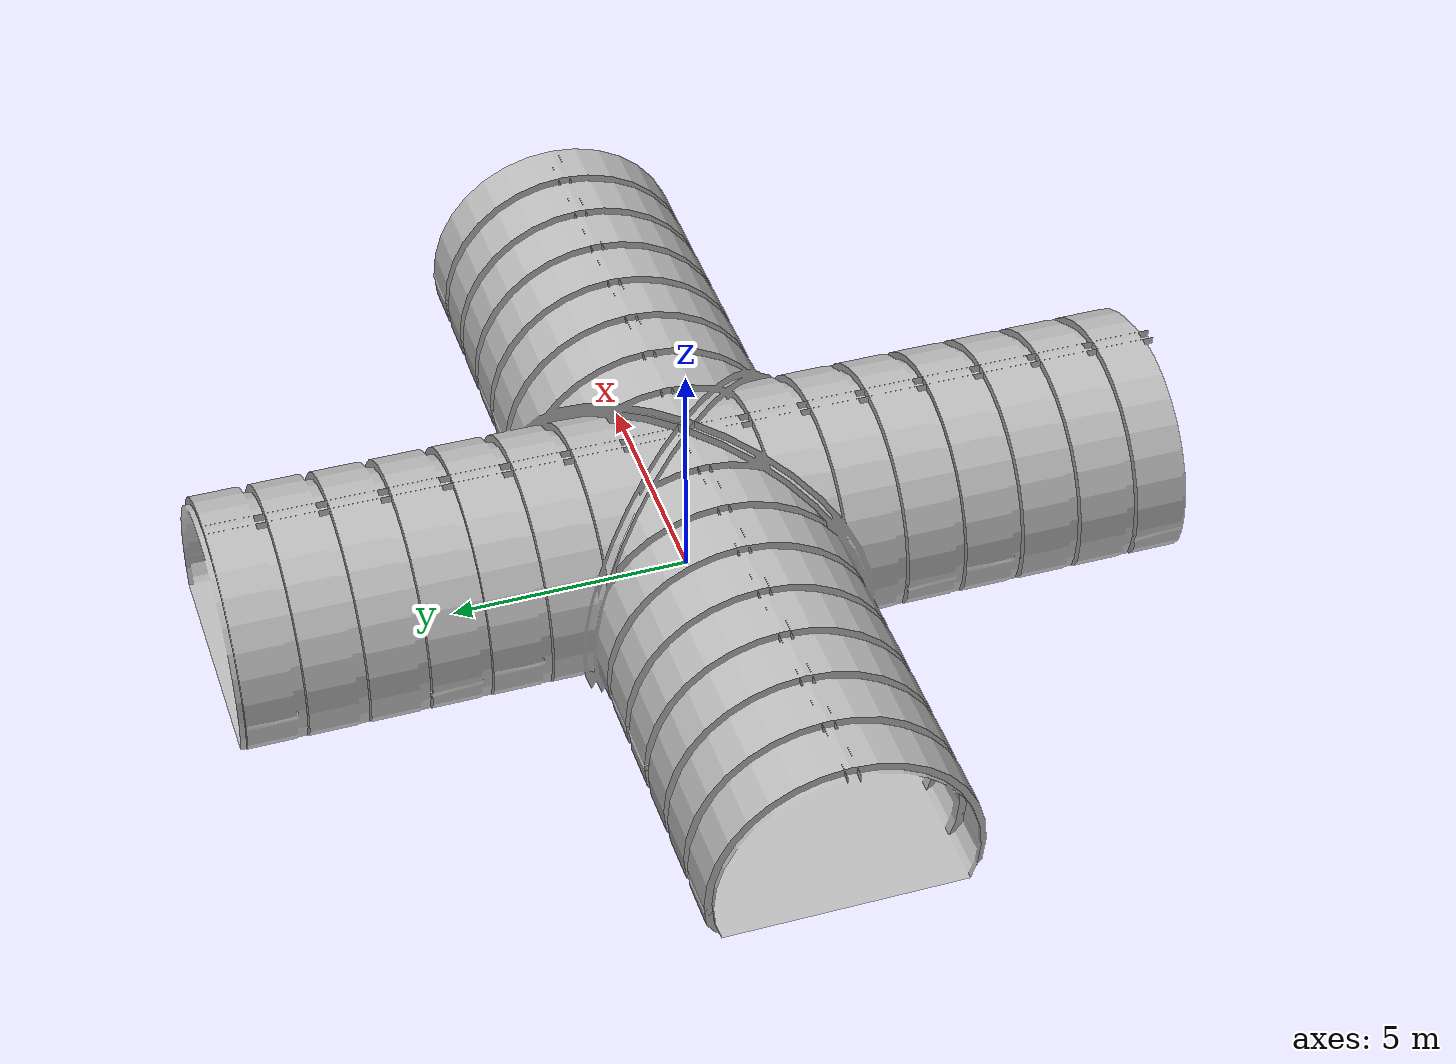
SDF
<?xml version="1.0" ?>
<sdf version="1.6">
  <model name="tunnel_tile_1">
    <static>true</static>
    <link name="link">
      <collision name="collision">
        <geometry>
          <mesh>
            <uri>model://tunnel_tile_1/meshes/tunnel_tile_1.dae</uri>
          </mesh>
        </geometry>
      </collision>
      <visual name="visual">
        <geometry>
          <mesh>
            <uri>model://tunnel_tile_1/meshes/tunnel_tile_1.dae</uri>
          </mesh>
        </geometry>
      </visual>
    </link>
  </model>
</sdf>
